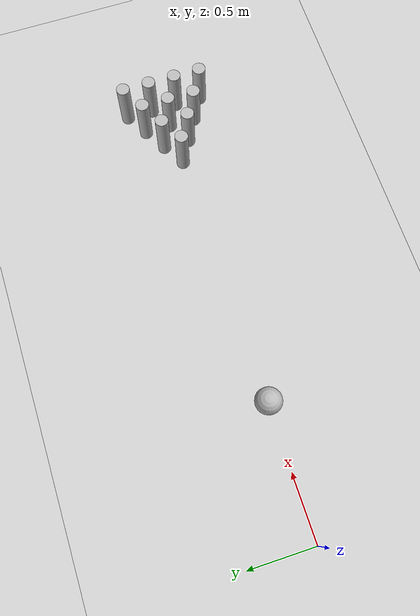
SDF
<sdf version="1.4">
  <world name="default">

    <scene>
      <ambient>0.4 0.4 0.4 1</ambient>
      <background>0.7 0.7 0.7 1</background>
      <shadows>true</shadows>
    </scene>

    <!-- A global light source -->
    <include>
      <uri>model://sun</uri>
    </include>

    <!-- A ground plane -->
    <include>
      <uri>model://ground_plane</uri>
    </include>

    <!-- Bowling ball -->
    <include>
      <pose> 1 0 0 0 0 0 </pose>
      <uri>model://bowling_ball</uri>
      <name>ball</name>
    </include>

    <!-- Bowling pins -->
    <!-- First row -->
    <include>
      <pose> 3 0 0 0 0 0 </pose>
      <uri>model://bowling_pin</uri>
      <name>pin1</name>
    </include>

    <!-- Second row -->
    <include>
      <pose> 3.1732 -0.1 0 0 0 0 </pose>
      <uri>model://bowling_pin</uri>
      <name>pin2</name>
    </include>

    <include>
      <pose> 3.1732 0.1 0 0 0 0 </pose>
      <uri>model://bowling_pin</uri>
      <name>pin3</name>
    </include>

    <!-- Third row -->
    <include>
      <pose> 3.346 -0.2 0 0 0 0 </pose>
      <uri>model://bowling_pin</uri>
      <name>pin4</name>
    </include>

    <include>
      <pose> 3.346 0 0 0 0 0 </pose>
      <uri>model://bowling_pin</uri>
      <name>pin5</name>
    </include>

    <include>
      <pose>3.346 0.2 0 0 0 0 </pose>
      <uri>model://bowling_pin</uri>
      <name>pin6</name>
    </include>

    <!-- Fourth row -->
    <include>
      <pose>3.520 -0.3 0 0 0 0 </pose>
      <uri>model://bowling_pin</uri>
      <name>pin7</name>
    </include>

    <include>
      <pose>3.520 -0.1 0 0 0 0 </pose>
      <uri>model://bowling_pin</uri>
      <name>pin8</name>
    </include>

    <include>
      <pose>3.520 0.1 0 0 0 0 </pose>
      <uri>model://bowling_pin</uri>
      <name>pin9</name>
    </include>

    <include>
      <pose>3.520 0.3 0 0 0 0 </pose>
      <uri>model://bowling_pin</uri>
      <name>pin10</name>
    </include>

    <physics type="ode">
      <real_time_update_rate>1000.0</real_time_update_rate>
      <max_step_size>0.001</max_step_size>
      <real_time_factor>1</real_time_factor>
      <ode>
        <solver>
          <type>quick</type>
          <iters>150</iters>
          <precon_iters>0</precon_iters>
          <sor>1.400000</sor>
          <use_dynamic_moi_rescaling>1</use_dynamic_moi_rescaling>
        </solver>
        <constraints>
          <cfm>0.00001</cfm>
          <erp>0.2</erp>
          <contact_max_correcting_vel>2000.000000</contact_max_correcting_vel>
          <contact_surface_layer>0.01000</contact_surface_layer>
        </constraints>
      </ode>
    </physics>
  </world>

</sdf>

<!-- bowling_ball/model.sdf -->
<sdf version='1.4'>
  <model name="bowling_ball">
    <static>false</static>
    <link name="ball">
      <!-- this controls the balls position -->
      <pose>0 0 .1 0 0 0</pose>

      <!-- this is the sphere that collision runs against -->
      <collision name='collision'>
        <geometry>
          <sphere>
            <radius>.1</radius>
          </sphere>
        </geometry>
      </collision>

      <!-- this is the sphere that is rendered -->
      <visual name='visual'>
        <geometry>
          <sphere>
            <radius>.1</radius>
          </sphere>
        </geometry>
      </visual>

      <!-- this controls physics properties (mass, moment of inertia) -->
      <inertial>
        <mass>0.2</mass>
        <inertia>
          <ixx>0.00004</ixx>
          <ixy>0</ixy>
          <ixz>0</ixz>
          <iyy>0.00004</iyy>
          <iyz>0</iyz>
          <izz>0.00004</izz>
        </inertia>
      </inertial>
    </link>
  </model>
</sdf>

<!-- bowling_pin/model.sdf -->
<sdf version='1.4'>
  <model name="bowling_pin">
    <static>false</static>
    <link name="pin">
      <!-- this controls the pins position -->
      <pose>0 0 .2 0 0 0</pose>

      <!-- this is the sphere that collision runs against -->
      <collision name='collision'>
        <geometry>
          <cylinder>
            <radius>0.05</radius>
            <length>0.4</length>
          </cylinder>
        </geometry>
      </collision>

      <!-- this is the sphere that is rendered -->
      <visual name='visual'>
        <geometry>
          <cylinder>
            <radius>0.05</radius>
            <length>0.4</length>
          </cylinder>
        </geometry>
      </visual>

      <!-- this controls physics properties (mass, moment of inertia) -->
      <inertial>
        <!-- position center of mass slightly higher to make it easier to tip over -->
        <pose>0 0 0.04 0 0 0</pose>
        <mass>0.01</mass>
        <inertia>
          <!-- these two moments of inertia are lower so the pins
                will tip more easily -->
          <ixx>0.00003</ixx>
          <ixy>0</ixy>
          <ixz>0</ixz>
          <iyy>0.00003</iyy>
          <iyz>0</iyz>
          <izz>0.001</izz>
        </inertia>
      </inertial>
    </link>
  </model>
</sdf>
